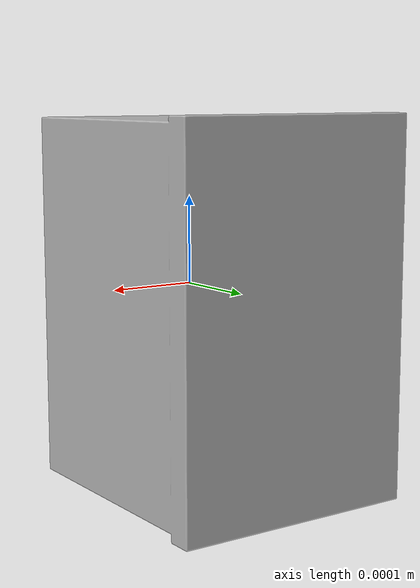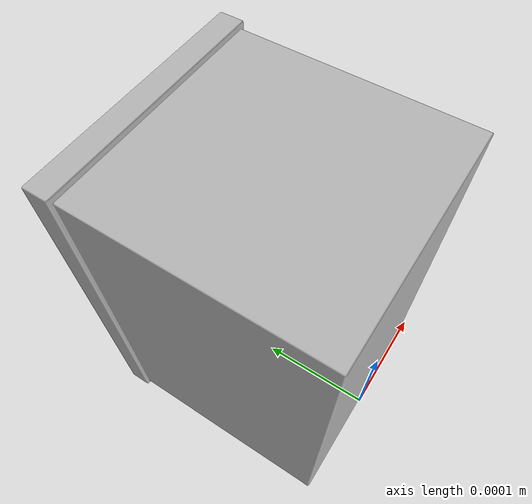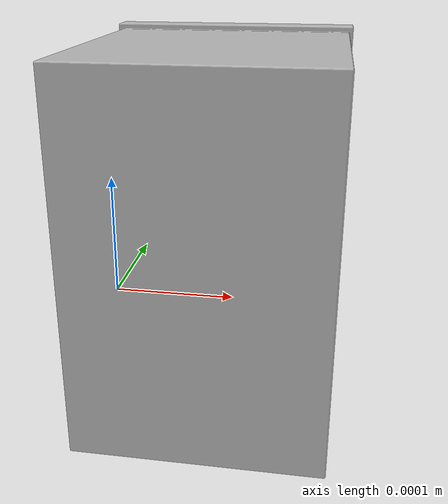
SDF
<?xml version="1.0"?>
<sdf version="1.6">
  <model name="box3_model">
    <static>false</static>

    <link name="link">
      <pose>0 0 0 0 0 0</pose>
      <gravity>false</gravity>

      <!-- VISUAL (solo grafica) -->
      <visual name="visual">
        <geometry>
          <mesh>
            <uri>model://box3_model/meshes/colored_box.obj</uri>
            <scale>0.00001 0.00001 0.00001</scale>
          </mesh>
        </geometry>
      </visual>

    </link>
  </model>
</sdf>
